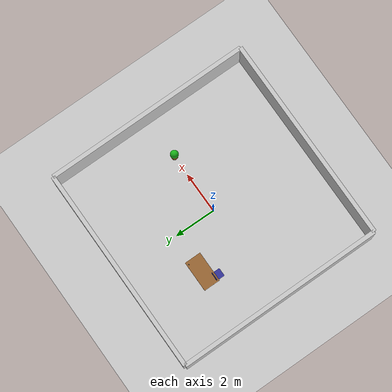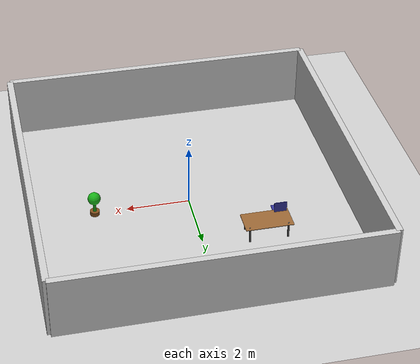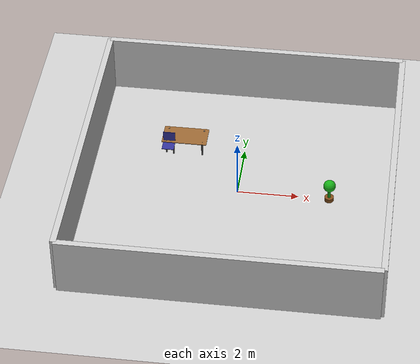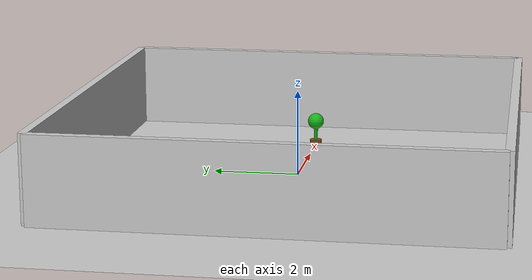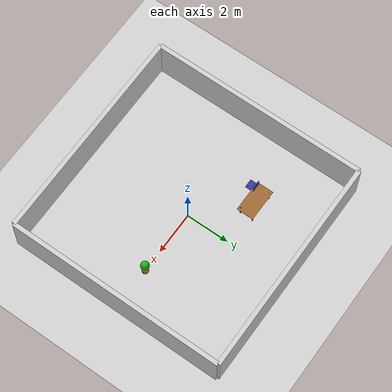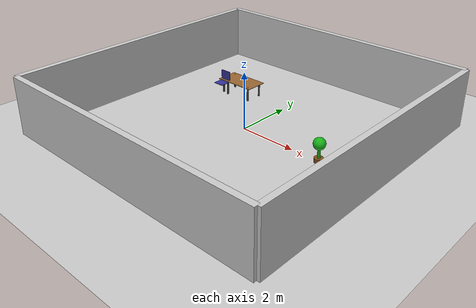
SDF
<?xml version="1.0" ?>
<sdf version="1.7">
  <world name="indoor_office">
    <!-- Include standard models -->
    <include>
      <uri>model://ground_plane</uri>
    </include>

    <include>
      <uri>model://sun</uri>
    </include>

    <!-- Physics engine -->
    <physics name="default_physics" type="ode">
      <max_step_size>0.001</max_step_size>
      <real_time_factor>1.0</real_time_factor>
      <real_time_update_rate>1000.0</real_time_update_rate>
    </physics>

    <!-- Office environment -->
    <!-- Walls -->
    <model name="wall_north">
      <pose>0 5 1 0 0 0</pose>
      <static>1</static>
      <link name="wall_link">
        <collision name="collision">
          <geometry>
            <box>
              <size>10 0.2 2</size>
            </box>
          </geometry>
        </collision>
        <visual name="visual">
          <geometry>
            <box>
              <size>10 0.2 2</size>
            </box>
          </geometry>
          <material>
            <ambient>0.8 0.8 0.8 1</ambient>
            <diffuse>0.8 0.8 0.8 1</diffuse>
          </material>
        </visual>
      </link>
    </model>

    <model name="wall_south">
      <pose>0 -5 1 0 0 0</pose>
      <static>1</static>
      <link name="wall_link">
        <collision name="collision">
          <geometry>
            <box>
              <size>10 0.2 2</size>
            </box>
          </geometry>
        </collision>
        <visual name="visual">
          <geometry>
            <box>
              <size>10 0.2 2</size>
            </box>
          </geometry>
          <material>
            <ambient>0.8 0.8 0.8 1</ambient>
            <diffuse>0.8 0.8 0.8 1</diffuse>
          </material>
        </visual>
      </link>
    </model>

    <model name="wall_east">
      <pose>5 0 1 0 0 1.5708</pose>
      <static>1</static>
      <link name="wall_link">
        <collision name="collision">
          <geometry>
            <box>
              <size>10 0.2 2</size>
            </box>
          </geometry>
        </collision>
        <visual name="visual">
          <geometry>
            <box>
              <size>10 0.2 2</size>
            </box>
          </geometry>
          <material>
            <ambient>0.8 0.8 0.8 1</ambient>
            <diffuse>0.8 0.8 0.8 1</diffuse>
          </material>
        </visual>
      </link>
    </model>

    <model name="wall_west">
      <pose>-5 0 1 0 0 1.5708</pose>
      <static>1</static>
      <link name="wall_link">
        <collision name="collision">
          <geometry>
            <box>
              <size>10 0.2 2</size>
            </box>
          </geometry>
        </collision>
        <visual name="visual">
          <geometry>
            <box>
              <size>10 0.2 2</size>
            </box>
          </geometry>
          <material>
            <ambient>0.8 0.8 0.8 1</ambient>
            <diffuse>0.8 0.8 0.8 1</diffuse>
          </material>
        </visual>
      </link>
    </model>

    <!-- Furniture -->
    <model name="desk">
      <pose>-2 2 0.5 0 0 0</pose>
      <link name="desk_top">
        <collision name="collision">
          <geometry>
            <box>
              <size>1.5 0.8 0.02</size>
            </box>
          </geometry>
        </collision>
        <visual name="visual">
          <geometry>
            <box>
              <size>1.5 0.8 0.02</size>
            </box>
          </geometry>
          <material>
            <ambient>0.6 0.4 0.2 1</ambient>
            <diffuse>0.6 0.4 0.2 1</diffuse>
          </material>
        </visual>
        <inertial>
          <mass>10.0</mass>
          <inertia>
            <ixx>1.0</ixx>
            <ixy>0.0</ixy>
            <ixz>0.0</ixz>
            <iyy>2.0</iyy>
            <iyz>0.0</iyz>
            <izz>2.5</izz>
          </inertia>
        </inertial>
      </link>
      <link name="leg1">
        <pose>0.6 0.3 -0.39 0 0 0</pose>
        <collision name="collision">
          <geometry>
            <box>
              <size>0.05 0.05 0.8</size>
            </box>
          </geometry>
        </collision>
        <visual name="visual">
          <geometry>
            <box>
              <size>0.05 0.05 0.8</size>
            </box>
          </geometry>
          <material>
            <ambient>0.3 0.3 0.3 1</ambient>
            <diffuse>0.3 0.3 0.3 1</diffuse>
          </material>
        </visual>
        <inertial>
          <mass>2.0</mass>
          <inertia>
            <ixx>0.1</ixx>
            <ixy>0.0</ixy>
            <ixz>0.0</ixz>
            <iyy>0.1</iyy>
            <iyz>0.0</iyz>
            <izz>0.01</izz>
          </inertia>
        </inertial>
      </link>
      <link name="leg2">
        <pose>-0.6 0.3 -0.39 0 0 0</pose>
        <collision name="collision">
          <geometry>
            <box>
              <size>0.05 0.05 0.8</size>
            </box>
          </geometry>
        </collision>
        <visual name="visual">
          <geometry>
            <box>
              <size>0.05 0.05 0.8</size>
            </box>
          </geometry>
          <material>
            <ambient>0.3 0.3 0.3 1</ambient>
            <diffuse>0.3 0.3 0.3 1</diffuse>
          </material>
        </visual>
        <inertial>
          <mass>2.0</mass>
          <inertia>
            <ixx>0.1</ixx>
            <ixy>0.0</ixy>
            <ixz>0.0</ixz>
            <iyy>0.1</iyy>
            <iyz>0.0</iyz>
            <izz>0.01</izz>
          </inertia>
        </inertial>
      </link>
      <link name="leg3">
        <pose>0.6 -0.3 -0.39 0 0 0</pose>
        <collision name="collision">
          <geometry>
            <box>
              <size>0.05 0.05 0.8</size>
            </box>
          </geometry>
        </collision>
        <visual name="visual">
          <geometry>
            <box>
              <size>0.05 0.05 0.8</size>
            </box>
          </geometry>
          <material>
            <ambient>0.3 0.3 0.3 1</ambient>
            <diffuse>0.3 0.3 0.3 1</diffuse>
          </material>
        </visual>
        <inertial>
          <mass>2.0</mass>
          <inertia>
            <ixx>0.1</ixx>
            <ixy>0.0</ixy>
            <ixz>0.0</ixz>
            <iyy>0.1</iyy>
            <iyz>0.0</iyz>
            <izz>0.01</izz>
          </inertia>
        </inertial>
      </link>
      <link name="leg4">
        <pose>-0.6 -0.3 -0.39 0 0 0</pose>
        <collision name="collision">
          <geometry>
            <box>
              <size>0.05 0.05 0.8</size>
            </box>
          </geometry>
        </collision>
        <visual name="visual">
          <geometry>
            <box>
              <size>0.05 0.05 0.8</size>
            </box>
          </geometry>
          <material>
            <ambient>0.3 0.3 0.3 1</ambient>
            <diffuse>0.3 0.3 0.3 1</diffuse>
          </material>
        </visual>
        <inertial>
          <mass>2.0</mass>
          <inertia>
            <ixx>0.1</ixx>
            <ixy>0.0</ixy>
            <ixz>0.0</ixz>
            <iyy>0.1</iyy>
            <iyz>0.0</iyz>
            <izz>0.01</izz>
          </inertia>
        </inertial>
      </link>
      <joint name="desk_top_to_leg1" type="fixed">
        <parent>desk_top</parent>
        <child>leg1</child>
        <pose>0.6 0.3 -0.4 0 0 0</pose>
      </joint>
      <joint name="desk_top_to_leg2" type="fixed">
        <parent>desk_top</parent>
        <child>leg2</child>
        <pose>-0.6 0.3 -0.4 0 0 0</pose>
      </joint>
      <joint name="desk_top_to_leg3" type="fixed">
        <parent>desk_top</parent>
        <child>leg3</child>
        <pose>0.6 -0.3 -0.4 0 0 0</pose>
      </joint>
      <joint name="desk_top_to_leg4" type="fixed">
        <parent>desk_top</parent>
        <child>leg4</child>
        <pose>-0.6 -0.3 -0.4 0 0 0</pose>
      </joint>
    </model>

    <!-- Chair -->
    <model name="chair">
      <pose>-2.5 1.5 0.45 0 0 0</pose>
      <link name="seat">
        <collision name="collision">
          <geometry>
            <box>
              <size>0.4 0.4 0.02</size>
            </box>
          </geometry>
        </collision>
        <visual name="visual">
          <geometry>
            <box>
              <size>0.4 0.4 0.02</size>
            </box>
          </geometry>
          <material>
            <ambient>0.2 0.2 0.6 1</ambient>
            <diffuse>0.2 0.2 0.6 1</diffuse>
          </material>
        </visual>
        <inertial>
          <mass>3.0</mass>
          <inertia>
            <ixx>0.1</ixx>
            <ixy>0.0</ixy>
            <ixz>0.0</ixz>
            <iyy>0.1</iyy>
            <iyz>0.0</iyz>
            <izz>0.15</izz>
          </inertia>
        </inertial>
      </link>
      <link name="back_rest">
        <pose>0 0.2 0.2 0 0 0</pose>
        <collision name="collision">
          <geometry>
            <box>
              <size>0.4 0.02 0.4</size>
            </box>
          </geometry>
        </collision>
        <visual name="visual">
          <geometry>
            <box>
              <size>0.4 0.02 0.4</size>
            </box>
          </geometry>
          <material>
            <ambient>0.2 0.2 0.6 1</ambient>
            <diffuse>0.2 0.2 0.6 1</diffuse>
          </material>
        </visual>
        <inertial>
          <mass>2.0</mass>
          <inertia>
            <ixx>0.1</ixx>
            <ixy>0.0</ixy>
            <ixz>0.0</ixz>
            <iyy>0.1</iyy>
            <iyz>0.0</iyz>
            <izz>0.05</izz>
          </inertia>
        </inertial>
      </link>
      <link name="leg1">
        <pose>0.15 0.15 -0.43 0 0 0</pose>
        <collision name="collision">
          <geometry>
            <box>
              <size>0.05 0.05 0.9</size>
            </box>
          </geometry>
        </collision>
        <visual name="visual">
          <geometry>
            <box>
              <size>0.05 0.05 0.9</size>
            </box>
          </geometry>
          <material>
            <ambient>0.3 0.3 0.3 1</ambient>
            <diffuse>0.3 0.3 0.3 1</diffuse>
          </material>
        </visual>
        <inertial>
          <mass>1.0</mass>
          <inertia>
            <ixx>0.05</ixx>
            <ixy>0.0</ixy>
            <ixz>0.0</ixz>
            <iyy>0.05</iyy>
            <iyz>0.0</iyz>
            <izz>0.01</izz>
          </inertia>
        </inertial>
      </link>
      <joint name="seat_to_back" type="fixed">
        <parent>seat</parent>
        <child>back_rest</child>
        <pose>0 0.2 0.2 0 0 0</pose>
      </joint>
      <joint name="seat_to_leg1" type="fixed">
        <parent>seat</parent>
        <child>leg1</child>
        <pose>0.15 0.15 -0.45 0 0 0</pose>
      </joint>
    </model>

    <!-- Plant -->
    <model name="plant">
      <pose>3 0 0 0 0 0</pose>
      <link name="pot">
        <collision name="collision">
          <geometry>
            <cylinder>
              <radius>0.15</radius>
              <length>0.25</length>
            </cylinder>
          </geometry>
        </collision>
        <visual name="visual">
          <geometry>
            <cylinder>
              <radius>0.15</radius>
              <length>0.25</length>
            </cylinder>
          </geometry>
          <material>
            <ambient>0.5 0.3 0.1 1</ambient>
            <diffuse>0.5 0.3 0.1 1</diffuse>
          </material>
        </visual>
        <inertial>
          <mass>2.0</mass>
          <inertia>
            <ixx>0.05</ixx>
            <ixy>0.0</ixy>
            <ixz>0.0</ixz>
            <iyy>0.05</iyy>
            <iyz>0.0</iyz>
            <izz>0.04</izz>
          </inertia>
        </inertial>
      </link>
      <link name="plant_body">
        <pose>0 0 0.2 0 0 0</pose>
        <collision name="collision">
          <geometry>
            <cylinder>
              <radius>0.05</radius>
              <length>0.8</length>
            </cylinder>
          </geometry>
        </collision>
        <visual name="visual">
          <geometry>
            <cylinder>
              <radius>0.05</radius>
              <length>0.8</length>
            </cylinder>
          </geometry>
          <material>
            <ambient>0.1 0.6 0.1 1</ambient>
            <diffuse>0.1 0.6 0.1 1</diffuse>
          </material>
        </visual>
        <inertial>
          <mass>0.5</mass>
          <inertia>
            <ixx>0.01</ixx>
            <ixy>0.0</ixy>
            <ixz>0.0</ixz>
            <iyy>0.01</iyy>
            <iyz>0.0</iyz>
            <izz>0.001</izz>
          </inertia>
        </inertial>
      </link>
      <link name="leaves">
        <pose>0 0 0.6 0 0 0</pose>
        <collision name="collision">
          <geometry>
            <sphere>
              <radius>0.2</radius>
            </sphere>
          </geometry>
        </collision>
        <visual name="visual">
          <geometry>
            <sphere>
              <radius>0.2</radius>
            </sphere>
          </geometry>
          <material>
            <ambient>0.1 0.7 0.1 1</ambient>
            <diffuse>0.1 0.7 0.1 1</diffuse>
          </material>
        </visual>
        <inertial>
          <mass>0.2</mass>
          <inertia>
            <ixx>0.002</ixx>
            <ixy>0.0</ixy>
            <ixz>0.0</ixz>
            <iyy>0.002</iyy>
            <iyz>0.0</iyz>
            <izz>0.002</izz>
          </inertia>
        </inertial>
      </link>
      <joint name="pot_to_body" type="fixed">
        <parent>pot</parent>
        <child>plant_body</child>
        <pose>0 0 0.125 0 0 0</pose>
      </joint>
      <joint name="body_to_leaves" type="fixed">
        <parent>plant_body</parent>
        <child>leaves</child>
        <pose>0 0 0.4 0 0 0</pose>
      </joint>
    </model>

  </world>
</sdf>
